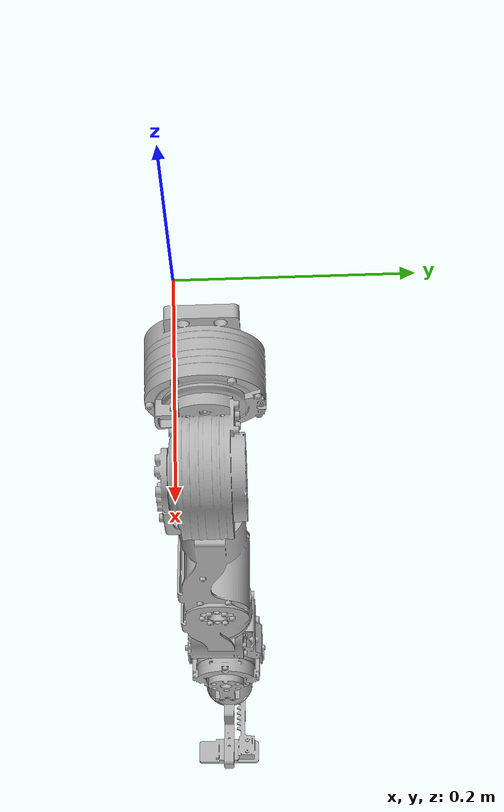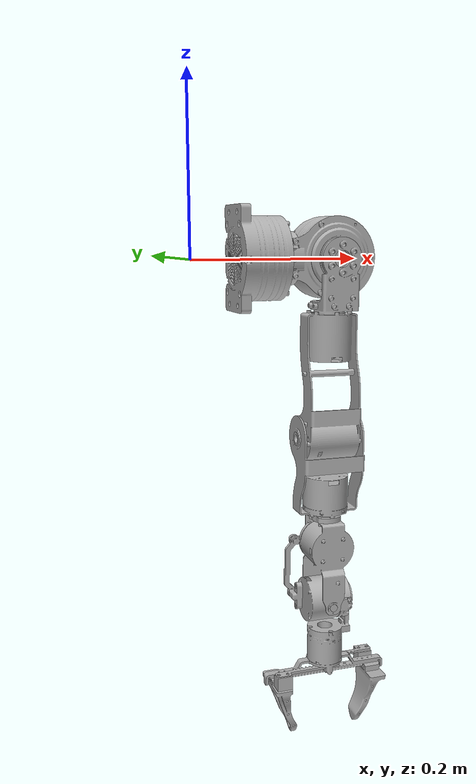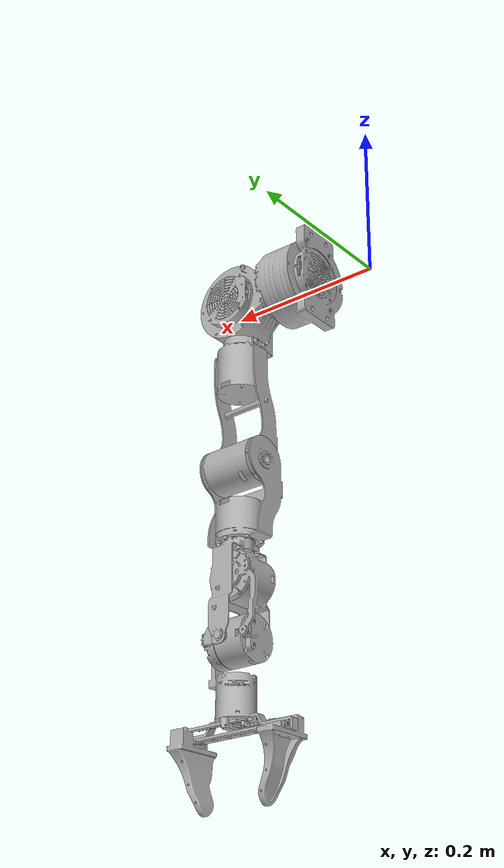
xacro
<?xml version="1.0" ?>
<robot name="openarm_v1_check" xmlns:xacro="http://www.ros.org/wiki/xacro">

<xacro:include filename="$(find openarm_v1_check_description)/urdf/materials.xacro" />
<xacro:include filename="$(find openarm_v1_check_description)/urdf/openarm_v1_check.trans" />
<xacro:include filename="$(find openarm_v1_check_description)/urdf/openarm_v1_check.gazebo" />

<link name="dummy_link" />

<joint name="dummy_to_base" type="fixed">
  <parent link="dummy_link"/>
  <child link="base_link"/>
  <origin xyz="0.12 0.0 0.0" rpy="0.0 ${pi/2} 0.0"/>
</joint>

<link name="base_link">
  <inertial>
    <origin xyz="3.221432824190855e-05 0.024168695042002048 -0.03172768332411897" rpy="0 0 0"/>
    <mass value="1.1995640851234708"/>
    <inertia ixx="0.001017" iyy="0.001176" izz="0.001542" ixy="0.0" iyz="-3.9e-05" ixz="1e-06"/>
  </inertial>
  <visual>
    <origin xyz="0 0 0" rpy="0 0 0"/>
    <geometry>
      <mesh filename="file://$(find openarm_v1_check_description)/meshes/base_link.stl" scale="0.001 0.001 0.001"/>
    </geometry>
    <material name="silver"/>
  </visual>
  <collision>
    <origin xyz="0 0 0" rpy="0 0 0"/>
    <geometry>
      <mesh filename="file://$(find openarm_v1_check_description)/meshes/base_link.stl" scale="0.001 0.001 0.001"/>
    </geometry>
  </collision>
</link>

<link name="oparm_link3_1">
  <inertial>
    <origin xyz="0.00024621933037934134 0.011217384033479494 0.040880535294230996" rpy="0 0 0"/>
    <mass value="0.13722660221420202"/>
    <inertia ixx="0.000121" iyy="0.000104" izz="6.2e-05" ixy="-0.0" iyz="-3.4e-05" ixz="-0.0"/>
  </inertial>
  <visual>
    <origin xyz="-3.6e-05 0.0051 -0.06" rpy="0 0 0"/>
    <geometry>
      <mesh filename="file://$(find openarm_v1_check_description)/meshes/oparm_link3_1.stl" scale="0.001 0.001 0.001"/>
    </geometry>
    <material name="silver"/>
  </visual>
  <collision>
    <origin xyz="-3.6e-05 0.0051 -0.06" rpy="0 0 0"/>
    <geometry>
      <mesh filename="file://$(find openarm_v1_check_description)/meshes/oparm_link3_1.stl" scale="0.001 0.001 0.001"/>
    </geometry>
  </collision>
</link>

<link name="right_jaw_gripper_link_1">
  <inertial>
    <origin xyz="-0.018623540768296087 -0.6043662155567081 0.706257325410316" rpy="0 0 0"/>
    <mass value="0.2697206045576214"/>
    <inertia ixx="0.000207" iyy="0.000188" izz="9.1e-05" ixy="-1e-06" iyz="-2.2e-05" ixz="2e-05"/>
  </inertial>
  <visual>
    <origin xyz="-0.077099 -0.627226 0.085415" rpy="0 0 0"/>
    <geometry>
      <mesh filename="file://$(find openarm_v1_check_description)/meshes/right_jaw_gripper_link_1.stl" scale="0.001 0.001 0.001"/>
    </geometry>
    <material name="silver"/>
  </visual>
  <collision>
    <origin xyz="-0.077099 -0.627226 0.085415" rpy="0 0 0"/>
    <geometry>
      <mesh filename="file://$(find openarm_v1_check_description)/meshes/right_jaw_gripper_link_1.stl" scale="0.001 0.001 0.001"/>
    </geometry>
  </collision>
</link>

<link name="left_jaw_gripper_link_1">
  <inertial>
    <origin xyz="-0.009211655962711285 -0.6019606699126449 0.7069826459154499" rpy="0 0 0"/>
    <mass value="0.26972369116983347"/>
    <inertia ixx="0.000211" iyy="0.00019" izz="9.4e-05" ixy="-1e-06" iyz="2.4e-05" ixz="-2.1e-05"/>
  </inertial>
  <visual>
    <origin xyz="0.050472 -0.627511 0.085887" rpy="0 0 0"/>
    <geometry>
      <mesh filename="file://$(find openarm_v1_check_description)/meshes/left_jaw_gripper_link_1.stl" scale="0.001 0.001 0.001"/>
    </geometry>
    <material name="silver"/>
  </visual>
  <collision>
    <origin xyz="0.050472 -0.627511 0.085887" rpy="0 0 0"/>
    <geometry>
      <mesh filename="file://$(find openarm_v1_check_description)/meshes/left_jaw_gripper_link_1.stl" scale="0.001 0.001 0.001"/>
    </geometry>
  </collision>
</link>

<link name="oparm_link8_1">
  <inertial>
    <origin xyz="0.013475181304335459 0.0003567477038644608 0.06322259972260419" rpy="0 0 0"/>
    <mass value="0.29654847355860214"/>
    <inertia ixx="0.000273" iyy="0.000377" izz="0.000172" ixy="-3e-06" iyz="-2e-06" ixz="-5.6e-05"/>
  </inertial>
  <visual>
    <origin xyz="0.017725 -0.024388 -0.496037" rpy="0 0 0"/>
    <geometry>
      <mesh filename="file://$(find openarm_v1_check_description)/meshes/oparm_link8_1.stl" scale="0.001 0.001 0.001"/>
    </geometry>
    <material name="silver"/>
  </visual>
  <collision>
    <origin xyz="0.017725 -0.024388 -0.496037" rpy="0 0 0"/>
    <geometry>
      <mesh filename="file://$(find openarm_v1_check_description)/meshes/oparm_link8_1.stl" scale="0.001 0.001 0.001"/>
    </geometry>
  </collision>
</link>

<link name="oparm_link7_1">
  <inertial>
    <origin xyz="0.0006971931971669018 -0.0371332056761626 -8.72435429246643e-05" rpy="0 0 0"/>
    <mass value="0.35049964186653515"/>
    <inertia ixx="0.000155" iyy="0.000142" izz="0.000158" ixy="-4e-06" iyz="-0.0" ixz="-1e-06"/>
  </inertial>
  <visual>
    <origin xyz="-0.001641 -0.062486 -0.495998" rpy="0 0 0"/>
    <geometry>
      <mesh filename="file://$(find openarm_v1_check_description)/meshes/oparm_link7_1.stl" scale="0.001 0.001 0.001"/>
    </geometry>
    <material name="silver"/>
  </visual>
  <collision>
    <origin xyz="-0.001641 -0.062486 -0.495998" rpy="0 0 0"/>
    <geometry>
      <mesh filename="file://$(find openarm_v1_check_description)/meshes/oparm_link7_1.stl" scale="0.001 0.001 0.001"/>
    </geometry>
  </collision>
</link>

<link name="oparm_link6_1">
  <inertial>
    <origin xyz="0.0010108549376505677 -0.0021343649000537014 0.04525763913770825" rpy="0 0 0"/>
    <mass value="0.4064094768272602"/>
    <inertia ixx="0.000315" iyy="0.000293" izz="0.000196" ixy="-1e-05" iyz="-1.1e-05" ixz="-1.3e-05"/>
  </inertial>
  <visual>
    <origin xyz="-0.002002 -0.025002 -0.375494" rpy="0 0 0"/>
    <geometry>
      <mesh filename="file://$(find openarm_v1_check_description)/meshes/oparm_link6_1.stl" scale="0.001 0.001 0.001"/>
    </geometry>
    <material name="silver"/>
  </visual>
  <collision>
    <origin xyz="-0.002002 -0.025002 -0.375494" rpy="0 0 0"/>
    <geometry>
      <mesh filename="file://$(find openarm_v1_check_description)/meshes/oparm_link6_1.stl" scale="0.001 0.001 0.001"/>
    </geometry>
  </collision>
</link>

<link name="oparm_link5_1">
  <inertial>
    <origin xyz="0.03079535100925454 -0.0004601633654249468 0.06300601018695967" rpy="0 0 0"/>
    <mass value="0.3860168307584398"/>
    <inertia ixx="0.000387" iyy="0.000472" izz="0.000253" ixy="-2e-06" iyz="-1.5e-05" ixz="-2.9e-05"/>
  </inertial>
  <visual>
    <origin xyz="0.030089 -0.024056 -0.280195" rpy="0 0 0"/>
    <geometry>
      <mesh filename="file://$(find openarm_v1_check_description)/meshes/oparm_link5_1.stl" scale="0.001 0.001 0.001"/>
    </geometry>
    <material name="silver"/>
  </visual>
  <collision>
    <origin xyz="0.030089 -0.024056 -0.280195" rpy="0 0 0"/>
    <geometry>
      <mesh filename="file://$(find openarm_v1_check_description)/meshes/oparm_link5_1.stl" scale="0.001 0.001 0.001"/>
    </geometry>
  </collision>
</link>

<link name="oparm_link4_1">
  <inertial>
    <origin xyz="-0.0002445221903466052 -0.0007851315158081199 0.09243964491456796" rpy="0 0 0"/>
    <mass value="0.8726548603810206"/>
    <inertia ixx="0.003756" iyy="0.003841" izz="0.000455" ixy="-3e-06" iyz="9e-06" ixz="2.2e-05"/>
  </inertial>
  <visual>
    <origin xyz="-0.00042 -0.025001 -0.126249" rpy="0 0 0"/>
    <geometry>
      <mesh filename="file://$(find openarm_v1_check_description)/meshes/oparm_link4_1.stl" scale="0.001 0.001 0.001"/>
    </geometry>
    <material name="silver"/>
  </visual>
  <collision>
    <origin xyz="-0.00042 -0.025001 -0.126249" rpy="0 0 0"/>
    <geometry>
      <mesh filename="file://$(find openarm_v1_check_description)/meshes/oparm_link4_1.stl" scale="0.001 0.001 0.001"/>
    </geometry>
  </collision>
</link>

<link name="oparm_link2_1">
  <inertial>
    <origin xyz="-3.259091224547657e-05 -0.0012070532036510886 0.05528434869372425" rpy="0 0 0"/>
    <mass value="1.1349034377688878"/>
    <inertia ixx="0.001084" iyy="0.001451" izz="0.00086" ixy="1e-06" iyz="-1.1e-05" ixz="0.0"/>
  </inertial>
  <visual>
    <origin xyz="-0.0 -0.025 -0.0" rpy="0 0 0"/>
    <geometry>
      <mesh filename="file://$(find openarm_v1_check_description)/meshes/oparm_link2_1.stl" scale="0.001 0.001 0.001"/>
    </geometry>
    <material name="silver"/>
  </visual>
  <collision>
    <origin xyz="-0.0 -0.025 -0.0" rpy="0 0 0"/>
    <geometry>
      <mesh filename="file://$(find openarm_v1_check_description)/meshes/oparm_link2_1.stl" scale="0.001 0.001 0.001"/>
    </geometry>
  </collision>
</link>

<joint name="oparm_joint1" type="revolute">
  <origin xyz="0.0 0.025 0.0" rpy="0 0 0"/>
  <parent link="base_link"/>
  <child link="oparm_link2_1"/>
  <axis xyz="0.0 -0.0 1.0"/>
  <limit upper="2.426008" lower="-2.426008" effort="100" velocity="100"/>
</joint>

<joint name="oparm_joint2" type="revolute">
  <origin xyz="3.6e-05 -0.0301 0.06" rpy="0 ${pi/2}  0"/>
  <parent link="oparm_link2_1"/>
  <child link="oparm_link3_1"/>
  <axis xyz="0.0 -1.0 0.0"/>
  <limit upper="1.570796" lower="-1.570796" effort="100" velocity="100"/>
</joint>

<joint name="oparm_joint3" type="revolute">
  <origin xyz="0.000384 0.030101 0.066249" rpy="0 0 0"/>
  <parent link="oparm_link3_1"/>
  <child link="oparm_link4_1"/>
  <axis xyz="0.0 0.0 1.0"/>
  <limit upper="1.570796" lower="-1.570796" effort="100" velocity="100"/>
</joint>

<joint name="oparm_joint4" type="revolute">
  <origin xyz="-0.030509 -0.000945 0.153946" rpy="0 0 0"/>
  <parent link="oparm_link4_1"/>
  <child link="oparm_link5_1"/>
  <axis xyz="-0.999529 -0.03001 0.006342"/>
  <limit upper="2.443461" lower="0.0" effort="100" velocity="100"/>
</joint>

<joint name="oparm_joint5" type="revolute">
  <origin xyz="0.032091 0.000946 0.095299" rpy="0 0 0"/>
  <parent link="oparm_link5_1"/>
  <child link="oparm_link6_1"/>
  <axis xyz="0.006344 8e-06 0.99998"/>
  <limit upper="1.570796" lower="-1.570796" effort="100" velocity="100"/>
</joint>

<joint name="oparm_joint6" type="revolute">
  <origin xyz="-0.000361 0.037484 0.120504" rpy="0 0 0"/>
  <parent link="oparm_link6_1"/>
  <child link="oparm_link7_1"/>
  <axis xyz="0.0 1.0 0.0"/>
  <limit upper="0.785398" lower="-0.785398" effort="100" velocity="100"/>
</joint>

<joint name="oparm_joint7" type="revolute">
  <origin xyz="-0.019366 -0.038098 3.9e-05" rpy="0 0 0"/>
  <parent link="oparm_link7_1"/>
  <child link="oparm_link8_1"/>
  <axis xyz="-1.0 0.0 0.0"/>
  <limit upper="1.570796" lower="-1.570796" effort="100" velocity="100"/>
</joint>

<joint name="right_gripper" type="prismatic">
  <origin xyz="0.094824 0.602838 -0.581452" rpy="0 0 0"/>
  <parent link="oparm_link8_1"/>
  <child link="right_jaw_gripper_link_1"/>
  <axis xyz="-0.999547 -0.03001 0.002227"/>
  <limit upper="0.043" lower="0.0" effort="100" velocity="100"/>
</joint>

<joint name="left_gripper" type="prismatic">
  <origin xyz="-0.032747 0.603123 -0.581924" rpy="0 0 0"/>
  <parent link="oparm_link8_1"/>
  <child link="left_jaw_gripper_link_1"/>
  <axis xyz="-0.999998 -0.0 0.002232"/>
  <limit upper="0.0" lower="-0.043" effort="100" velocity="100"/>
</joint>

</robot>

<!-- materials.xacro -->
<robot name="openarm_v1_check" xmlns:xacro="http://www.ros.org/wiki/xacro" >

<material name="silver">
  <color rgba="0.700 0.700 0.700 1.000"/>
</material>

</robot>

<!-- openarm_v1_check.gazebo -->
<robot name="openarm_v1_check" xmlns:xacro="http://www.ros.org/wiki/xacro" >

<xacro:property name="body_color" value="Gazebo/Silver" />

<gazebo>
  <plugin name="control" filename="libgazebo_ros_control.so"/>
</gazebo>
<gazebo reference="base_link">
  <material>${body_color}</material>
  <mu1>0.2</mu1>
  <mu2>0.2</mu2>
  <self_collide>true</self_collide>
  <gravity>true</gravity>
</gazebo>

<gazebo reference="oparm_link3_1">
  <material>${body_color}</material>
  <mu1>0.2</mu1>
  <mu2>0.2</mu2>
  <self_collide>true</self_collide>
</gazebo>

<gazebo reference="right_jaw_gripper_link_1">
  <material>${body_color}</material>
  <mu1>0.2</mu1>
  <mu2>0.2</mu2>
  <self_collide>true</self_collide>
</gazebo>

<gazebo reference="left_jaw_gripper_link_1">
  <material>${body_color}</material>
  <mu1>0.2</mu1>
  <mu2>0.2</mu2>
  <self_collide>true</self_collide>
</gazebo>

<gazebo reference="oparm_link8_1">
  <material>${body_color}</material>
  <mu1>0.2</mu1>
  <mu2>0.2</mu2>
  <self_collide>true</self_collide>
</gazebo>

<gazebo reference="oparm_link7_1">
  <material>${body_color}</material>
  <mu1>0.2</mu1>
  <mu2>0.2</mu2>
  <self_collide>true</self_collide>
</gazebo>

<gazebo reference="oparm_link6_1">
  <material>${body_color}</material>
  <mu1>0.2</mu1>
  <mu2>0.2</mu2>
  <self_collide>true</self_collide>
</gazebo>

<gazebo reference="oparm_link5_1">
  <material>${body_color}</material>
  <mu1>0.2</mu1>
  <mu2>0.2</mu2>
  <self_collide>true</self_collide>
</gazebo>

<gazebo reference="oparm_link4_1">
  <material>${body_color}</material>
  <mu1>0.2</mu1>
  <mu2>0.2</mu2>
  <self_collide>true</self_collide>
</gazebo>

<gazebo reference="oparm_link2_1">
  <material>${body_color}</material>
  <mu1>0.2</mu1>
  <mu2>0.2</mu2>
  <self_collide>true</self_collide>
</gazebo>

</robot>
